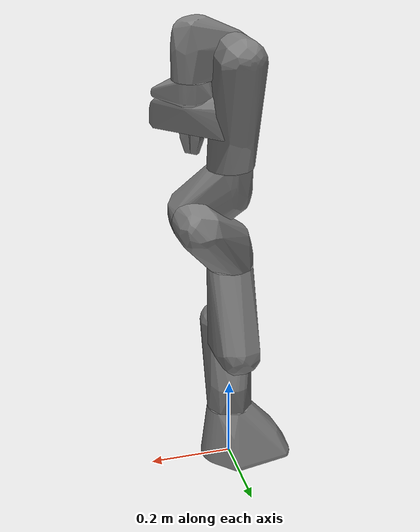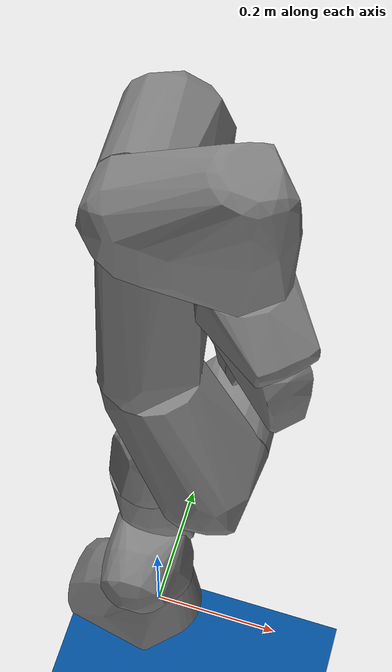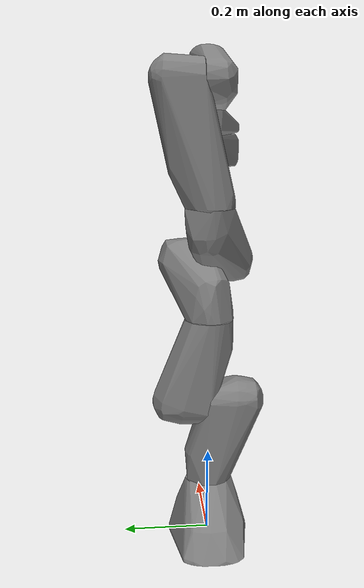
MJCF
<mujoco model="MuJoCo Model">
  <compiler angle="radian"/>

  <option timestep="0.01" integrator="implicitfast" ls_iterations="10"/>

  <default>
    <geom friction="1 0.5 0.001"/>
  </default>

  <asset>
    <mesh name="/World/envs/env_0/Robot/panda_link0/collisions/collisions_1" vertex="0.071567 -0.001274 0.001349 -0.001227 -0.094614 -3.2e-05 0.061945 -0.035979 0.001181 0.054855 0.004472 0.14 0.054335 -0.046949 0.001048 0.071081 0.008446 0.00134 0.068619 0.020818 0.001298 0.05859 0.041241 0.001123 0.070665 -0.011563 0.001333 0.067359 -0.024527 0.001276 0.063587 0.032993 0.00121 -0.008865 0.054359 0.140002 0.027681 -0.04768 0.14 0.01437 -0.053249 0.139999 -0.13583 0.066315 1e-06 0.039566 -0.03847 0.140003 0.052652 -0.016356 0.14 0.047476 -0.027926 0.14 0.054877 -0.004566 0.14 -0.052861 0.015711 0.14 0.004086 0.093982 0.000171 -0.000517 0.09467 -6e-06 0.003172 0.09335 0.008631 -0.001599 0.093632 0.008492 0.039102 0.038749 0.14 -0.148808 -0.042055 0 -0.152578 -0.024818 0 0.046247 0.030033 0.14 0.006489 0.073519 0.08108 -0.021853 0.050685 0.14 0.000349 -0.055082 0.14 -0.143472 -0.054862 0 -0.118609 -0.03105 0.06134 -0.052884 -0.015585 0.14 0.007694 0.092272 0.000234 0.007344 0.091447 0.008318 0.053554 0.012818 0.14 0.050948 0.020789 0.14 0.052578 0.048771 0.001018 -0.133699 0.066932 0.007415 0.003496 -0.094216 0.000178 0.008268 -0.091825 0.000243 -0.065898 -0.076548 0.058979 -0.071675 -0.075621 0.05752 -0.037696 -0.040138 0.14 -0.151587 -0.024833 0.008048 -0.15241 0.025827 0 -0.129159 0.068684 0.007445 -0.031706 0.04501 0.14 -0.109983 0.048611 0.05888 0.009066 -0.073708 0.078596 -0.000867 -0.093737 0.008178 -0.154079 -0.005542 0 -0.140043 0.060723 0 -0.113238 0.044715 0.059685 0.006782 -0.073532 0.080976 -0.122615 0.005636 0.061149 -0.14929 0.04025 0 -0.023111 -0.075972 0.068968 -0.146172 0.046753 0.007704 -0.119414 0.02879 0.06114 -0.145377 0.050892 0 -0.131612 0.068847 1e-06 -0.131625 -0.068799 -1e-06" face="63 1 43 41 1 4 41 4 15 23 21 47 11 23 47 10 21 7 10 6 21 38 35 24 38 34 35 38 7 21 38 21 34 12 15 30 12 41 15 8 1 0 8 9 1 2 4 1 2 1 9 40 51 1 40 1 41 53 21 1 53 39 14 62 14 39 62 39 47 62 47 21 62 21 53 62 53 14 22 21 23 33 15 11 29 39 48 29 48 11 29 47 39 29 11 47 37 6 10 16 9 8 5 3 0 5 21 6 5 0 1 5 1 21 13 12 30 55 58 51 55 30 58 55 13 30 42 30 43 42 58 30 42 51 58 42 1 51 42 43 1 26 52 1 26 1 25 31 1 63 31 25 1 31 63 32 46 1 52 46 57 1 59 54 39 59 60 54 59 39 53 59 57 46 61 1 57 61 53 1 61 57 59 61 59 53 49 48 39 49 54 48 49 39 54 20 35 34 20 22 35 20 34 21 20 21 22 28 23 11 28 22 23 28 11 24 28 24 35 28 35 22 19 11 48 19 33 11 19 48 54 19 54 60 44 30 15 44 15 33 44 43 30 44 33 32 44 63 43 44 32 63 56 32 33 56 19 60 56 33 19 56 60 59 56 59 46 27 15 37 27 11 15 27 24 11 27 7 38 27 38 24 27 10 7 27 37 10 36 15 3 36 37 15 36 6 37 36 5 6 36 3 5 18 3 15 18 15 16 18 16 8 18 0 3 18 8 0 17 16 15 17 15 4 17 4 2 17 2 9 17 9 16 50 12 13 50 13 55 50 41 12 50 40 41 50 51 40 50 55 51 45 26 25 45 25 31 45 31 32 45 32 56 45 52 26 45 46 52 45 56 46"/>
    <mesh name="/World/envs/env_0/Robot/panda_link1/collisions/collisions_2" vertex="0.024036 -0.064734 0.049546 -0.042252 -0.00048 0.035591 -0.050318 -0.000497 0.022466 -0.020955 -0.064622 0.050931 -0.049066 -0.08831 0.012652 -0.008 -0.0547 -0.192 0.000198 0.054921 -0.125178 -0.053198 -0.062031 0.014282 -0.054987 -0.060276 0.002945 0.055161 -0.003628 -0.192004 0.008945 0.054262 -0.126225 -0.053668 -0.013207 -0.192003 -0.001065 -0.065471 0.054973 -0.014252 -0.084755 0.049507 -0.043082 -0.06386 0.034509 -0.052335 0.017523 -0.192 0.053515 -0.062246 0.012661 0.051739 0.019267 -0.119399 0.054382 0.008925 -0.191997 0.004878 -0.129373 0.000947 -0.005769 -0.128742 0.007856 -0.011212 -0.122478 0.026151 -0.044899 -0.107411 0.012099 -0.042942 -0.03502 -0.191999 0.023176 -0.05014 -0.192 -0.02296 -0.085024 0.04611 -0.031829 -0.064068 0.045033 -0.025424 0.048832 -0.126658 0.034727 -0.116294 -0.014648 0.013466 -0.127783 0.005269 0.003794 -0.089031 0.050524 -0.025502 -0.114408 0.030829 -0.026108 -0.048685 -0.192 -0.028668 -0.119668 -0.016316 0.046016 -0.000517 0.030428 0.009926 -0.064837 0.05423 -0.051902 -0.080543 0.005154 -0.033995 -0.107523 0.031677 -0.033893 -0.117564 -0.012558 -0.045587 -0.107758 -0.007254 -0.008857 0.054245 -0.126016 0.046528 -0.06468 0.029295 0.046444 -0.107388 0.000104 0.037478 0.040467 -0.125702 0.01382 -0.119368 0.030524 -0.041507 -0.107025 0.021371 -0.014551 -0.107379 0.044191 -0.034037 -0.083714 0.038941 -0.03331 0.043874 -0.126128 -0.021549 0.050744 -0.192 0.042932 -0.107418 0.017665 0.017859 -0.124397 -0.016615 0.025412 -0.120945 -0.017632 0.032858 -0.064327 0.044151 0.033284 -0.107291 0.032546 -0.015549 -0.126569 -0.010424 0.021351 -0.084324 0.047018 -0.041334 -0.084538 0.030631 0.013692 -0.107199 0.044435 -0.054768 -0.000602 0.007517 0.011304 -0.091072 0.048954 0.037113 -0.040731 -0.192 0.049622 -0.024777 -0.191999 0.034292 0.04317 -0.192" face="3 12 1 11 49 9 11 8 59 14 1 2 18 16 9 18 17 16 29 19 51 48 59 2 35 1 12 34 1 35 34 16 17 26 3 1 26 1 14 7 14 2 7 59 8 7 2 59 20 19 29 5 24 51 5 9 24 5 11 9 32 38 23 32 33 38 32 23 11 32 11 5 57 14 7 45 37 57 45 4 22 45 7 4 45 57 7 36 8 11 36 22 4 36 7 8 36 4 7 39 23 38 39 38 22 39 11 23 39 36 11 39 22 36 63 9 49 63 18 9 63 49 10 63 17 18 6 40 1 6 49 40 6 10 49 6 1 34 6 34 10 52 24 28 52 51 24 52 28 29 52 29 51 44 58 46 44 46 21 44 29 50 44 21 20 44 20 29 41 50 16 41 16 34 41 34 53 42 9 16 42 16 50 42 62 9 42 29 28 42 50 29 61 28 24 61 24 9 61 9 62 61 42 28 61 62 42 31 46 37 31 21 46 31 37 45 31 45 22 31 20 21 31 22 38 31 38 20 30 46 58 30 35 12 13 12 3 13 30 12 13 46 30 27 40 49 27 49 48 27 48 2 27 1 40 27 2 1 15 11 59 15 59 48 15 49 11 15 48 49 54 53 56 54 41 53 54 50 41 54 56 58 54 58 44 54 44 50 60 58 56 60 56 35 60 30 58 60 35 30 43 34 17 43 10 34 43 17 63 43 63 10 0 53 34 0 34 35 0 56 53 0 35 56 47 26 14 47 57 37 47 14 57 25 3 26 25 13 3 25 46 13 25 26 47 25 37 46 25 47 37 55 38 33 55 20 38 55 19 20 55 51 19 55 5 51 55 33 32 55 32 5"/>
    <mesh name="/World/envs/env_0/Robot/panda_link2/collisions/collisions_3" vertex="0.05478 0.008755 0.000695 0.054985 0.001797 0.060077 0.048413 -0.123261 -0.026532 -0.010578 -0.194 0.054149 0.011452 -0.126129 -0.053787 -0.032099 0.045 0.000508 -0.043963 0.033295 0.00049 0.039076 0.038788 0.000497 0.054135 0.009444 0.062822 0.039946 -0.124494 -0.037926 -0.055153 -0.19401 0.005101 -0.021417 0.050906 0.064564 -0.007769 0.054505 0.064503 -0.017912 0.052124 0.000504 -0.05118 0.020557 0.000499 0.037916 -0.014736 0.113617 -0.00246 0.05522 0.000493 0.037325 -0.194 -0.040575 -0.051883 -0.194 -0.018395 -0.043936 -0.011797 0.108632 0.003379 0.055008 0.06444 0.005598 -0.194 0.054903 0.000752 -0.007417 0.129075 0.04778 -0.194 0.027475 0.054936 -0.194003 -0.005 -0.048742 -0.193999 0.025965 -0.03743 -0.194 0.040666 -0.036151 0.041648 0.064481 -0.003484 -0.016731 0.127099 0.031051 -0.126082 -0.045501 -0.02768 -0.126212 -0.047668 0.036953 -0.194 0.041087 -4.3e-05 -0.194 -0.055097 0.016019 -0.194 -0.052881 0.053431 -0.194 0.013614 -0.045213 0.031449 0.063457 -0.051227 0.020371 0.06275 -0.013871 -0.126413 -0.05334 -0.031162 0.034397 0.107352 -0.054916 0.004632 0.061059 -0.051425 0.013273 0.074757 0.002612 0.008569 0.128877 0.051786 0.00163 0.081572 -0.026749 -0.194 -0.04829 -0.05452 -0.194 -0.008187 -0.009527 0.037623 0.115319 0.016992 0.028742 0.119516 0.019051 -0.017229 0.123856 -0.015039 0.011399 0.126577 -0.03812 -0.194 -0.039784 -0.04667 -0.194 -0.029425 0.003973 0.000518 0.129489 0.026031 0.009702 0.122739 0.044607 -0.011733 0.107859 -0.044065 0.015443 0.10713 -0.042764 0.005394 0.111331 0.02 0.046744 0.088105 0.019662 0.0421 0.107295 0.039956 0.03257 0.084039 0.036581 0.028501 0.107512 -0.023691 0.021526 0.120405 0.013767 0.020453 0.124378 0.031728 0.03403 0.107127 0.024906 0.031369 0.114376" face="25 10 26 24 0 1 49 30 43 49 43 10 44 18 10 44 14 18 44 10 39 44 39 14 32 10 43 45 48 61 45 11 38 34 23 24 34 24 1 34 1 42 31 21 10 31 10 24 31 24 23 52 59 63 53 42 59 53 59 52 53 52 15 53 34 42 53 23 34 53 31 23 53 15 31 8 1 0 8 42 1 8 59 42 8 58 59 7 4 16 7 16 20 7 8 0 7 58 8 12 20 16 12 11 45 12 57 20 12 45 57 56 20 57 56 58 7 56 7 20 19 25 26 19 26 28 19 10 25 19 48 55 19 28 48 19 39 10 54 38 35 54 19 55 54 40 39 54 39 19 27 38 11 27 35 38 27 11 5 36 35 14 36 39 40 36 14 39 36 40 54 36 54 35 50 14 30 50 30 49 50 18 14 50 10 18 50 49 10 6 30 14 6 14 35 6 35 27 6 27 5 13 5 11 13 12 16 13 11 12 29 0 9 29 7 0 29 4 7 29 9 17 2 0 24 2 9 0 2 24 17 2 17 9 33 32 4 33 29 17 33 4 29 33 10 32 33 24 10 33 17 24 37 4 32 37 43 30 37 32 43 37 30 6 37 6 5 37 5 13 37 16 4 37 13 16 3 28 26 3 21 28 3 26 10 3 10 21 22 51 48 22 48 28 47 28 21 47 21 31 47 31 15 47 22 28 47 51 22 47 52 51 47 15 52 62 57 63 62 63 59 62 59 58 62 56 57 62 58 56 46 63 57 46 57 45 46 45 61 46 61 52 46 52 63 41 48 51 41 61 48 41 51 52 41 52 61 60 45 38 60 48 45 60 38 54 60 55 48 60 54 55"/>
    <mesh name="/World/envs/env_0/Robot/panda_link3/collisions/collisions_4" vertex="0.046301 -0.030187 -0.120999 -0.016675 0.052758 -0.121001 0.082189 0.000568 0.055156 0.11444 0.101004 -0.01911 -0.030187 -0.023146 -0.026645 0.106453 0.065611 0.046881 0.082221 0.107566 -0.020426 0.049881 0.023787 -0.121 0.124788 0.091303 -0.019898 0.120542 0.000546 0.040058 0.106871 0.101004 0.027909 0.129196 0.000776 -0.029613 0.127308 0.000507 0.032247 0.135174 0.065815 -0.001263 0.133141 0.066125 -0.014248 0.102467 0.000564 0.051469 0.054401 0.008968 -0.121 0.001935 -0.054534 -0.101876 0.132378 0.000608 0.023833 -0.037087 0.041023 -0.121018 0.045446 0.100871 -0.002465 0.099071 0.108666 -0.005736 0.119397 0.100939 0.000438 0.113908 0.091545 -0.034439 0.124558 0.065814 -0.031581 0.082949 0.111203 -0.001596 0.090231 0.092298 0.045707 0.071485 0.000568 0.054191 -0.051607 -0.019395 -0.121 0.00728 -0.047779 -0.052229 0.052254 0.090089 0.036272 0.063756 0.106924 -0.012549 0.051103 0.067234 0.042013 -0.054422 0.00201 -0.099662 0.115961 0.066544 0.040596 0.116054 0.086166 0.034788 0.116384 0.100933 0.014279 0.114547 0.093809 0.03214 0.122662 0.093747 0.021421 0.133242 0.066199 0.014384 0.137561 0.000591 -0.005199 -0.025692 -0.048999 -0.120998 -0.054615 0.008915 -0.120971 -0.054646 -0.007606 -0.120996 -0.013154 -0.043029 -0.037657 -0.051133 0.01661 -0.089954 -0.037785 0.033267 -0.063465 -0.038601 0.012569 -0.029565 -0.051532 0.000953 -0.070878 0.063816 0.108261 0.000704 0.07258 0.110435 5.8e-05 0.059348 0.066195 0.047189 -0.044413 -0.008708 -0.038502 -0.036818 0.027215 -0.040392 -0.034843 -0.013918 -0.026153 0.013829 -0.052766 -0.101191 0.136889 0.000544 0.010212 -0.015856 -0.03838 -0.030971 0.054918 -0.007835 -0.120998 0.005735 -0.054917 -0.120998 0.009506 0.054968 -0.120998 -0.00713 -0.054668 -0.120995 0.032959 -0.044375 -0.120999 0.018842 -0.051789 -0.121005" face="60 1 6 58 11 0 38 36 10 38 13 8 34 35 5 34 5 9 34 9 12 56 63 40 56 40 13 62 11 40 62 40 63 62 0 11 62 63 0 61 17 44 61 44 41 28 48 43 4 28 41 4 41 44 4 44 57 15 5 2 15 9 5 29 44 17 29 12 9 29 9 15 29 18 12 29 2 44 29 15 2 50 25 6 50 10 25 50 49 30 31 6 1 31 50 6 31 49 50 53 47 30 53 48 47 19 43 42 19 28 43 19 63 41 19 41 28 19 60 7 19 1 60 20 30 49 20 53 30 20 46 53 20 19 46 20 1 19 20 31 1 20 49 31 33 42 43 33 43 48 52 54 47 52 47 48 52 48 28 52 4 54 52 28 4 45 19 42 45 46 19 45 42 33 45 33 48 45 53 46 45 48 53 23 24 7 23 8 24 23 3 8 23 7 60 23 60 6 23 6 3 14 11 24 14 40 11 14 13 40 14 8 13 14 24 8 16 0 63 16 58 0 16 19 7 16 63 19 16 7 24 16 24 11 16 11 58 21 25 10 21 10 36 21 6 25 21 3 6 22 8 3 22 38 8 22 36 38 22 21 36 22 3 21 26 30 51 26 50 30 26 10 50 26 5 35 26 2 5 26 51 2 39 13 38 39 56 13 39 18 56 39 12 18 39 34 12 39 38 35 39 35 34 37 35 38 37 38 10 37 26 35 37 10 26 27 2 51 27 54 4 27 4 57 27 44 2 27 57 44 32 30 47 32 51 30 32 47 54 32 54 27 32 27 51 55 56 18 55 63 56 55 18 29 55 29 17 59 41 63 59 61 41 59 17 61 59 55 17 59 63 55"/>
    <mesh name="/World/envs/env_0/Robot/panda_link4/collisions/collisions_5" vertex="0.022569 -0.039557 0.093692 0.034986 -0.029175 0.09376 0.045213 0.031664 0.001119 -0.028172 0.124 -0.010519 -0.074238 0.123996 -0.05458 -0.037091 0.123998 -0.031832 0.026427 -0.045716 0.065717 -0.092249 0.124 0.054293 0.035207 -0.010845 0.100914 -0.07657 0.039825 -0.045276 -0.032575 0.017421 0.100906 0.043362 -0.013919 0.093861 0.016564 -0.007618 0.108349 0.008852 0.002476 0.110543 -0.07238 0.123999 0.054529 0.002049 0.037664 0.10079 -0.137607 0.123998 0.00324 -0.134661 0.123981 0.018168 -0.086144 0.123968 -0.055207 -0.033068 0.123999 0.025663 0.05435 0.010373 0.000642 0.054037 -0.011261 0.000538 -0.082402 0.09292 -0.053905 0.022579 -0.050414 0.000558 0.043896 -0.033551 0.000521 0.050405 -0.022856 0.000627 0.021827 0.02994 0.100929 -0.004346 0.002963 0.111052 -0.041858 -0.020943 0.089692 -0.05138 0.123999 0.045753 0.031774 0.03386 0.091676 -0.0277 0.124 0.006122 -0.054846 0.124009 -0.04796 0.05514 -0.002814 0.000579 0.004073 -0.05515 0.000623 -0.086007 0.037573 -0.044819 -0.095079 0.030948 -0.039772 -0.114342 0.028618 -0.024115 0.009153 -0.05208 0.065466 -0.016019 0.001295 0.109144 -0.130713 0.06118 -0.01327 0.050232 0.023144 0.000568 0.048737 0.020431 0.065666 -0.023522 -0.049968 0.000617 0.045445 -0.026708 0.065418 -0.12201 0.074521 0.033735 -0.034936 -0.012055 0.100886 -0.015165 0.009109 0.108663 0.005715 -0.048166 0.086143 -0.006624 -0.046218 0.091497 -0.02617 -0.039015 0.090543 -0.016175 -0.033271 0.100932 -0.073458 0.06948 -0.050559 -0.06897 0.088499 -0.051781 0.036704 0.003599 0.100953 -0.121732 0.031247 0.014315 -0.120676 0.026656 0.003086 -0.031992 -0.041577 0.06683 -0.022347 -0.047624 0.066152 -0.132355 0.063413 0.007006 -0.005765 0.018216 0.1081 -0.126198 0.036393 -0.009207 -0.112995 0.060261 -0.039425 -0.087198 0.079611 -0.052439" face="57 50 55 3 2 5 29 30 19 32 3 5 32 20 33 32 16 7 32 7 29 32 29 19 56 57 55 47 39 27 17 7 16 13 27 12 13 12 54 26 54 30 26 30 29 26 13 54 14 7 15 14 29 7 14 15 26 14 26 29 22 63 18 52 9 63 52 24 9 52 22 53 52 63 22 52 25 24 52 53 25 4 32 53 4 22 18 4 53 22 4 18 16 4 16 32 41 20 32 41 5 2 41 32 5 31 32 19 31 3 32 31 19 30 31 2 3 21 25 53 21 32 33 21 53 32 35 9 34 35 63 9 43 37 36 43 56 37 43 35 34 43 36 35 43 57 56 62 36 37 62 37 40 62 63 35 62 35 36 62 18 63 62 16 18 62 40 16 59 16 40 59 17 16 61 40 37 61 37 56 61 59 40 61 56 55 61 55 59 23 24 6 23 34 9 23 9 24 38 6 48 38 48 49 38 34 23 38 23 6 44 1 6 44 6 24 44 24 25 44 11 1 44 25 21 44 33 11 44 21 33 0 6 1 0 48 6 0 49 48 0 1 12 58 50 57 58 49 50 58 57 43 58 38 49 58 43 34 58 34 38 60 15 7 60 7 47 60 47 27 60 27 13 60 26 15 60 13 26 28 55 50 28 50 46 45 59 55 45 17 59 45 55 28 45 28 46 45 7 17 45 46 7 51 39 46 51 27 39 51 50 49 51 46 50 51 12 27 51 49 0 51 0 12 10 47 7 10 7 46 10 39 47 10 46 39 8 54 12 8 11 54 8 12 1 8 1 11 42 20 41 42 30 54 42 54 11 42 33 20 42 11 33 42 41 2 42 2 31 42 31 30"/>
    <mesh name="/World/envs/env_0/Robot/panda_link5/collisions/collisions_6" vertex="-0.04313 0.034598 -0.258994 -0.0276 0.088409 -0.173066 -0.029237 0.015796 0.038075 0.011487 0.054236 -0.258996 -0.00797 0.054581 -0.259003 0.055083 -0.002321 -0.259005 0.031288 0.015806 0.036584 -0.040353 0.100177 0.032255 0.037409 0.099821 0.035842 -0.017632 0.015806 0.044786 0.05258 0.017422 -0.259 -0.016435 0.125262 0.025051 -0.004211 0.128983 0.016533 -0.038999 0.015812 0.028229 0.050526 0.103338 0.003046 -0.006807 0.129518 0.011324 0.027149 0.088218 -0.175367 0.030975 0.045755 -0.259001 -0.015768 0.128209 0.010706 -0.049491 0.104632 -0.007973 -0.02223 0.08404 -0.1947 -0.026016 0.048977 -0.258996 -0.004649 0.097802 0.052168 -0.002655 0.015805 0.047984 0.024511 0.125729 -0.002052 -0.025397 0.09856 0.04545 0.021609 0.124624 0.021486 0.043474 0.034016 -0.258998 -0.001501 -0.054086 -0.234891 -0.020944 0.127182 0.004685 -0.041418 0.1135 0.007594 -0.049008 0.101881 0.014702 -0.050406 0.10394 0.000262 0.008457 0.097855 0.05158 0.014791 0.015774 0.045936 -0.00634 0.129112 -0.006773 -0.004047 0.129904 0.002559 0.00996 -0.050737 -0.214368 -0.016543 0.127324 -0.007896 -0.034761 0.11653 0.017193 -0.028201 0.123798 0.013646 -0.041061 0.114696 -0.004035 -0.011763 -0.053896 -0.259001 -0.000101 0.117598 0.038153 0.018216 0.127911 0.008189 -0.010877 0.089085 -0.186003 -0.030896 0.110555 0.031109 -0.027126 0.105324 0.039382 -0.031338 -0.044683 -0.22725 0.049514 0.104438 -0.008035 -0.032903 0.122164 0.000226 -0.023461 0.125996 -0.003386 0.003135 -0.055128 -0.258948 -0.04972 -0.003351 -0.264554 -0.036886 -0.040848 -0.259013 -0.049702 0.003472 -0.264544 -0.053972 0.011547 -0.259007 -0.055017 -0.004388 -0.258986 -0.046492 -0.02971 -0.259049 -0.047662 0.015861 0.005784 0.047668 0.015861 0.005726 0.000367 0.089818 -0.185536 -0.019695 -0.05136 -0.242356 -0.011589 -0.053809 -0.248529" face="10 14 5 52 53 5 9 23 22 59 32 57 55 5 53 55 10 5 55 53 57 27 17 16 27 10 55 27 55 17 33 22 23 33 23 34 60 5 14 21 4 55 21 55 0 62 28 13 41 50 1 12 36 15 24 26 14 2 7 13 2 13 28 56 55 57 56 0 55 56 57 32 20 4 21 20 0 1 20 21 0 3 55 4 3 17 55 3 4 61 3 61 16 3 16 17 37 6 34 37 60 6 37 34 23 37 28 52 37 23 9 37 52 5 37 5 60 37 2 28 37 9 2 8 14 26 8 26 33 8 60 14 8 6 60 8 34 6 8 33 34 43 33 26 43 12 11 43 26 12 43 22 33 43 11 47 63 52 28 63 28 62 48 13 59 48 62 13 48 54 62 58 57 53 58 53 54 58 59 57 58 48 59 58 54 48 42 53 52 42 54 53 42 52 63 42 62 54 42 63 62 51 1 50 51 38 1 51 50 29 51 29 38 35 29 36 35 38 29 35 16 61 35 24 16 45 1 38 45 20 1 45 35 61 45 38 35 45 61 4 45 4 20 19 32 41 19 41 1 19 1 0 19 56 32 19 0 56 25 47 7 25 9 22 25 22 43 25 43 47 25 7 2 25 2 9 46 47 11 46 7 47 46 39 7 40 29 50 40 46 11 40 39 46 31 7 39 31 32 59 31 13 7 31 59 13 30 50 41 30 40 50 30 39 40 30 41 32 30 32 31 30 31 39 18 11 12 18 12 15 18 40 11 18 29 40 18 15 36 18 36 29 44 36 12 44 12 26 44 26 24 44 35 36 44 24 35 49 24 14 49 16 24 49 27 16 49 14 10 49 10 27"/>
    <mesh name="/World/envs/env_0/Robot/panda_link6/collisions/collisions_7" vertex="-0.048005 -0.003164 -0.014747 -0.046934 0.010732 -0.014834 -0.043919 -0.019759 -0.014745 0.090083 0.071522 0.036134 0.09621 -0.051223 0.043315 -0.029993 -0.035958 0.029048 -0.040367 0.026331 -0.014752 -0.009168 -0.046587 0.021677 0.052828 -0.051189 0.031754 0.103877 0.012659 0.041045 0.015562 -0.024034 0.056309 -0.010917 -0.047107 -0.014281 0.122347 -0.0512 -0.027866 0.083335 0.020392 -0.043403 0.111398 0.072297 0.015605 0.1001 0.075228 -0.023901 0.067158 0.081681 -0.007441 0.099598 0.048589 0.039292 0.074318 0.074768 0.033919 0.09713 -0.0512 -0.043143 0.132208 -0.051199 0.00135 0.129874 -0.051199 -0.014322 0.129336 -0.051197 0.01563 0.062339 0.077814 0.024078 -0.035869 0.005669 0.042117 0.109158 -0.051199 -0.038847 0.108684 0.074084 -0.011412 0.118023 0.068405 0.008846 0.015051 0.024085 0.056206 0.053597 -0.051187 -0.031059 -0.015126 0.020082 0.052653 -0.031455 0.029034 0.035793 0.043446 -0.017819 0.055119 0.040446 0.018833 0.055529 -0.022397 -0.011884 0.051059 -0.0074 -0.023724 0.054148 -0.043011 0.020195 0.027855 -0.046951 -0.001408 0.029664 0.131348 0.009396 -0.007998 0.100013 0.075251 0.024123 0.12138 0.063099 0.015205 0.086831 0.076754 -0.029051 -0.028926 0.038945 -0.014661 0.05776 0.081278 0.000354 -0.01807 0.034711 0.040549 0.128215 0.049971 0.005706 -0.014513 -0.042906 0.031953 -0.034979 0.031425 0.02851 0.055642 0.079453 0.012235 0.109491 0.010677 -0.038422 -0.031783 -0.025374 0.03875 0.125861 0.020175 -0.022236 0.110567 0.067759 0.026951 0.078251 0.079509 0.024287 0.095384 0.070337 -0.035672 0.077314 0.079608 -0.023509 0.059885 0.080214 -0.015544 -0.005128 0.024063 0.054418 0.121453 0.018448 0.028662 0.126265 0.058419 -0.000245 0.065655 0.081334 0.013335 0.102437 0.068088 0.033798 -0.025173 0.040277 0.022046 0.131421 0.021853 0.006249" face="2 0 19 33 28 10 3 28 33 8 7 11 8 46 7 55 42 56 55 56 16 26 55 16 30 44 31 37 0 2 43 56 42 43 16 56 62 43 42 62 48 43 62 23 48 62 44 23 32 33 10 17 33 9 17 61 3 17 3 33 53 26 16 18 23 44 18 53 23 18 3 53 18 28 3 52 40 14 27 40 59 27 14 40 27 59 26 27 26 14 63 22 20 63 20 38 58 40 52 58 22 63 58 17 9 58 61 17 58 52 61 21 38 20 35 50 46 5 46 50 5 37 2 5 50 37 5 2 11 5 11 7 5 7 46 29 8 11 29 2 19 29 11 2 4 19 12 4 20 22 4 29 19 4 8 29 4 21 20 4 12 21 4 32 10 4 58 9 4 22 58 4 9 33 4 33 32 4 10 35 4 46 8 4 35 46 13 49 19 13 54 49 13 19 0 13 42 54 13 6 42 25 12 19 25 19 49 25 49 12 51 12 49 51 21 12 51 38 21 51 59 38 51 54 59 51 49 54 41 54 42 41 42 55 15 59 54 15 26 59 15 54 41 15 55 26 15 41 55 1 36 6 1 13 0 1 6 13 1 0 37 1 37 36 34 50 35 34 35 30 24 36 37 24 30 31 24 31 36 24 34 30 24 37 50 24 50 34 47 36 31 47 31 44 47 44 62 47 62 42 47 42 6 47 6 36 39 53 3 39 3 61 39 14 26 39 26 53 39 61 52 39 52 14 60 16 43 60 53 16 60 43 48 60 48 23 60 23 53 57 44 30 57 18 44 57 28 18 57 30 35 57 10 28 57 35 10 45 59 40 45 38 59 45 63 38 45 40 58 45 58 63"/>
    <mesh name="/World/envs/env_0/Robot/panda_link7/collisions/collisions_8" vertex="-0.014643 0.026963 0.106821 0.079071 0.035077 0.094492 0.034635 -0.027228 0.052124 0.024465 -0.01859 0.106837 0.033384 -0.028652 0.096679 0.02205 0.022362 0.106818 0.036947 0.079381 0.076667 0.01371 0.042013 0.052003 -0.040712 -0.035504 0.084714 -0.036427 -0.039501 0.089079 -0.011782 -0.042409 0.052055 0.002013 -0.043828 0.096804 -0.001018 -0.04403 0.052071 0.02153 -0.038274 0.096689 0.018262 -0.040127 0.052101 0.080795 0.03667 0.082324 0.077637 0.035709 0.095991 0.040587 -0.017237 0.05204 -0.013272 0.041875 0.052005 -0.028507 0.011434 0.106802 -0.023894 -0.019354 0.106802 0.038972 0.079642 0.093692 0.035179 0.079449 0.093829 0.035256 0.077529 0.096057 -0.031876 0.030179 0.096708 -0.03531 -0.040737 0.084614 -0.029975 -0.032195 0.052039 -0.044035 -0.00162 0.052074 -0.042725 -0.010443 0.052064 0.008517 -0.043263 0.052105 0.081306 0.039723 0.085821 0.078953 0.038309 0.094703 0.055083 0.067465 0.09277 0.027071 -0.03454 0.096768 0.039355 0.081097 0.089372 -0.028757 0.033326 0.05211 -0.039666 -0.036274 0.088832 -0.019961 -0.038751 0.097167 0.006889 -0.029908 0.1068 0.027746 -0.034283 0.052052 0.080879 0.037306 0.090443 0.049938 0.069712 0.094904 0.080019 0.036309 0.078146 0.063813 0.055812 0.076442 0.049675 0.069796 0.076643 0.058682 0.06567 0.088348 0.08036 0.039083 0.092514 0.039656 0.081087 0.081628 0.031151 0.031215 0.051991 -0.043358 -0.006639 0.096822 0.07262 0.048678 0.093146 0.067045 0.056241 0.091529 0.062302 0.055877 0.095824 0.079328 0.037021 0.076647 0.072974 0.047059 0.077306 0.046695 0.075455 0.090601 0.035347 0.079851 0.079387 -0.043266 0.008526 0.052097 0.042535 0.012075 0.052002 0.043768 -0.003468 0.052 -0.037013 -0.023885 0.052071 -0.002946 0.04382 0.052 -0.000489 0.030825 0.1068 0.031087 -0.001497 0.106799" face="16 3 4 1 16 4 56 6 18 7 6 48 28 27 18 28 18 26 28 8 27 59 26 48 59 53 17 59 10 26 57 18 27 37 9 11 63 3 16 63 5 3 63 16 5 52 23 5 52 5 16 52 41 23 52 50 32 52 32 41 62 5 23 2 15 4 29 11 12 29 12 14 29 13 11 29 14 13 61 18 6 61 6 7 61 7 48 61 48 26 61 26 18 49 19 24 49 24 57 49 27 8 49 57 27 25 26 10 25 9 8 25 8 26 25 10 12 25 12 11 25 11 9 60 26 8 60 28 26 60 8 28 58 48 53 58 59 48 58 53 59 39 12 10 39 10 59 39 59 17 39 14 12 39 17 2 39 13 14 39 2 4 35 56 18 35 24 56 35 18 57 35 57 24 33 4 3 33 3 13 33 39 4 33 13 39 38 13 3 38 11 13 38 37 11 51 32 50 51 45 32 51 30 45 51 46 30 51 50 46 31 52 16 31 50 52 31 46 50 31 16 1 31 1 46 0 5 62 0 3 5 0 24 19 0 23 24 0 62 23 40 1 4 40 4 15 40 15 30 40 30 46 40 46 1 42 17 53 42 2 17 42 15 2 42 53 30 42 30 15 44 48 6 44 43 48 44 45 43 54 53 48 54 48 43 54 30 53 54 45 30 54 43 45 47 6 56 47 56 34 47 44 6 47 45 44 55 32 45 55 45 47 55 47 34 22 34 56 22 24 23 22 56 24 21 23 41 21 22 23 21 34 22 21 55 34 21 41 32 21 32 55 36 8 9 36 49 8 20 19 49 20 37 38 20 49 36 20 38 3 20 9 37 20 36 9 20 3 0 20 0 19"/>
    <mesh name="/World/envs/env_0/Robot/panda_hand/collisions/collisions_9" vertex="0.017134 -0.089271 0.063614 -0.017054 -0.095525 0.022121 0.031616 -0.001861 0.00118 -0.031636 -0.000579 0.005973 -0.028011 0.041784 -0.006396 -0.025981 0.07577 -0.005082 -0.000113 0.092808 0.065962 -0.015472 -0.090706 0.06519 -0.016767 0.090252 0.064332 0.016956 -0.091603 0.005563 -4.1e-05 -0.10399 0.005691 0.00381 -0.082966 -0.024449 0.03159 -0.000559 0.006214 0.025448 0.081181 0.003501 -0.031598 -0.001987 0.001153 -0.012988 -0.092496 0.065712 0.01623 -0.099538 0.051584 0.003495 -0.102716 -0.008029 0.017033 -0.096802 0.030322 0.023869 0.090401 0.004368 -0.0015 -0.04587 -0.025925 -0.022761 0.080174 -0.00691 -0.016533 -0.082236 -0.005118 -0.003637 -0.083586 -0.024606 -0.01751 -0.097908 0.051666 -1.7e-05 -0.103743 -0.009199 -0.012567 0.093712 0.065168 0.013425 -0.091927 0.065731 -0.017255 -0.0907 0.063082 -0.018449 0.092016 0.058393 0.003076 -0.087973 -0.023979 0.016735 0.090129 0.064432 0.019802 0.097011 0.020914 0.028015 0.042042 -0.00635 -0.014422 0.091276 0.06569 -0.014623 0.100168 0.055735 0.003602 -0.101195 -0.012628 0.015805 -0.099416 0.05497 -1.6e-05 0.098496 0.027082 -0.000314 0.094615 0.007575 0.016558 -0.085132 -0.003873 0.013139 -0.094063 0.064683 0.015551 0.1002 0.054673 -0.000337 0.086562 -0.004163 0.024515 0.081703 -0.005051 -0.000868 -0.082548 -0.02587 -0.003617 -0.101158 -0.01261 -0.016632 -0.098554 0.054734 0.001191 -0.100301 0.058623 0.01354 0.092672 0.065688 0.022959 0.077901 -0.007399 -0.014617 -0.093442 0.0645 -0.014017 -0.100091 0.056027 -0.023026 0.092897 0.009877 -0.000627 -0.087975 -0.024962 0.024729 0.08574 -0.001232 -0.019229 0.097261 0.050588 -0.016995 0.099363 0.054115 -0.021822 0.095442 0.021756 -0.02527 0.082065 0.005197 -0.023556 0.091166 0.004608 -0.016046 0.093209 0.063617 -0.018193 0.099518 0.043814 -0.019067 0.097697 0.024627" face="28 7 8 31 27 0 56 59 3 30 40 36 23 14 4 24 14 1 24 28 3 24 3 14 24 1 46 49 6 27 49 27 31 49 26 6 13 19 31 12 31 0 12 2 13 12 13 31 34 8 7 34 6 26 57 35 62 57 62 56 58 59 56 58 56 62 29 56 3 29 3 28 29 28 8 51 7 28 11 2 40 11 40 30 11 30 45 41 0 27 16 2 12 16 12 0 16 10 17 9 36 40 9 17 36 9 40 2 54 30 36 54 36 46 54 46 23 54 45 30 54 23 45 25 36 17 25 46 36 25 17 10 25 10 52 25 52 24 25 24 46 22 1 14 22 14 23 22 46 1 22 23 46 47 28 24 47 24 52 47 51 28 47 52 51 20 21 50 20 11 45 20 45 23 20 23 4 20 4 21 5 21 4 5 3 59 5 59 60 5 60 21 5 14 3 5 4 14 43 50 21 43 44 50 43 21 60 43 60 39 43 39 19 42 62 35 42 38 62 42 35 26 42 26 49 42 31 19 42 49 31 55 19 13 55 43 19 55 44 43 53 60 59 53 59 58 53 39 60 63 62 38 63 58 62 63 38 39 63 53 58 63 39 53 61 57 56 61 56 29 61 29 8 61 8 34 61 34 26 61 26 35 61 35 57 32 19 39 32 39 38 32 42 19 32 38 42 33 2 11 33 50 44 33 20 50 33 11 20 33 44 55 33 13 2 33 55 13 15 41 27 15 7 51 15 34 7 15 27 6 15 6 34 48 51 52 48 15 51 48 41 15 48 52 10 37 0 41 37 16 0 37 41 48 37 10 16 37 48 10 18 16 17 18 17 9 18 2 16 18 9 2"/>
    <mesh name="/World/envs/env_0/Robot/panda_leftfinger/collisions/collisions_10" vertex="0.010449 0.002583 0.000147 -0.010387 0.002534 0.000132 -0.00873 -2.4e-05 0.036165 0.00584 0.014274 0.053803 0.01036 0.026403 0.000155 0.008616 0.013989 0.051328 0.0104 0.025253 0.019037 0.010495 0.015103 0.018436 0.008693 -0.000133 0.050166 -0.008623 -5.7e-05 0.050953 -0.007778 0.014218 0.052366 -0.010401 0.026309 0.000167 -0.010479 0.016102 0.018988 -0.008841 0.013918 0.050589 -0.010389 0.02522 0.019188 -0.005481 -9.1e-05 0.053725 0.006138 -2.1e-05 0.053578 -0.005278 0.014293 0.053849" face="9 12 1 0 7 8 2 9 1 2 0 8 2 1 0 4 7 0 4 0 1 5 8 7 16 8 5 16 5 3 6 7 4 6 5 7 6 3 5 13 12 9 13 9 10 15 8 16 15 2 8 15 9 2 15 10 9 15 16 3 14 13 10 14 12 13 14 6 4 17 15 3 17 10 15 17 14 10 17 3 6 17 6 14 11 1 12 11 12 14 11 4 1 11 14 4"/>
    <mesh name="/World/envs/env_0/Robot/panda_rightfinger/collisions/collisions_11" vertex="0.010449 0.002583 0.000147 -0.010387 0.002534 0.000132 -0.00873 -2.4e-05 0.036165 0.00584 0.014274 0.053803 0.01036 0.026403 0.000155 0.008616 0.013989 0.051328 0.0104 0.025253 0.019037 0.010495 0.015103 0.018436 0.008693 -0.000133 0.050166 -0.008623 -5.7e-05 0.050953 -0.007778 0.014218 0.052366 -0.010401 0.026309 0.000167 -0.010479 0.016102 0.018988 -0.008841 0.013918 0.050589 -0.010389 0.02522 0.019188 -0.005481 -9.1e-05 0.053725 0.006138 -2.1e-05 0.053578 -0.005278 0.014293 0.053849" face="9 12 1 0 7 8 2 9 1 2 0 8 2 1 0 4 7 0 4 0 1 5 8 7 16 8 5 16 5 3 6 7 4 6 5 7 6 3 5 13 12 9 13 9 10 15 8 16 15 2 8 15 9 2 15 10 9 15 16 3 14 13 10 14 12 13 14 6 4 17 15 3 17 10 15 17 14 10 17 3 6 17 6 14 11 1 12 11 12 14 11 4 1 11 14 4"/>
  </asset>

  <worldbody>
    <geom name="/World/ground/GroundPlane/CollisionPlane_0" size="5 5 5" pos="0 0 -1.05" type="plane" contype="2" conaffinity="2147483645" friction="0.5 0.25 0.0005" rgba="0 0.3 0.6 1"/>
    <body name="/World/envs/env_0/Robot/panda_link0">
      <inertial pos="-0.0291898 -0.000879453 0.0566033" quat="0.00411399 0.564916 0.0132856 0.825031" mass="2.99647" diaginertia="0.0126063 0.0116919 0.00851673"/>
      <geom name="/World/envs/env_0/Robot/panda_link0/collisions/collisions_1" type="mesh" contype="4" conaffinity="2147483643" friction="0.5 0.25 0.0005" mesh="/World/envs/env_0/Robot/panda_link0/collisions/collisions_1"/>
      <body name="/World/envs/env_0/Robot/panda_link1" pos="0 0 0.333">
        <inertial pos="1.13243e-05 -0.0312655 -0.0693733" quat="0.984661 0.174481 -0.00010109 0.000345821" mass="2.97504" diaginertia="0.0176202 0.0165198 0.00586128"/>
        <joint name="/World/envs/env_0/Robot/panda_link0/panda_joint1" pos="0 0 0" axis="1.19209e-07 0 1" limited="true" range="-2.8973 2.8973" armature="0.001" frictionloss="1e-05"/>
        <geom name="/World/envs/env_0/Robot/panda_link1/collisions/collisions_2" type="mesh" contype="4" conaffinity="2147483643" friction="0.5 0.25 0.0005" mesh="/World/envs/env_0/Robot/panda_link1/collisions/collisions_2"/>
        <body name="/World/envs/env_0/Robot/panda_link2" quat="0.707107 -0.707107 0 0">
          <inertial pos="-1.31437e-05 -0.0703214 0.0311783" quat="0.574839 0.818267 -5.99109e-05 -6.64197e-05" mass="3.00425" diaginertia="0.0180142 0.0168923 0.00593454"/>
          <joint name="/World/envs/env_0/Robot/panda_link1/panda_joint2" pos="0 0 0" axis="1.19209e-07 0 1" limited="true" range="-1.7628 1.7628" armature="0.001" frictionloss="1e-05"/>
          <geom name="/World/envs/env_0/Robot/panda_link2/collisions/collisions_3" type="mesh" contype="8" conaffinity="2147483639" friction="0.5 0.25 0.0005" mesh="/World/envs/env_0/Robot/panda_link2/collisions/collisions_3"/>
          <body name="/World/envs/env_0/Robot/panda_link3" pos="0 -0.316 0" quat="0.707107 0.707107 0 0">
            <inertial pos="0.0443483 0.0249282 -0.0381301" quat="0.0615223 0.349825 0.23429 0.904956" mass="2.32784" diaginertia="0.00992797 0.00972427 0.00417338"/>
            <joint name="/World/envs/env_0/Robot/panda_link2/panda_joint3" pos="0 0 0" axis="1.19209e-07 0 1" limited="true" range="-2.8973 2.8973" armature="0.001" frictionloss="1e-05"/>
            <geom name="/World/envs/env_0/Robot/panda_link3/collisions/collisions_4" type="mesh" contype="8" conaffinity="2147483639" friction="0.5 0.25 0.0005" mesh="/World/envs/env_0/Robot/panda_link3/collisions/collisions_4"/>
            <body name="/World/envs/env_0/Robot/panda_link4" pos="0.0825 0 0" quat="0.707107 0.707107 0 0">
              <inertial pos="-0.0385502 0.0395255 0.0247162" quat="0.813566 0.465042 0.30979 0.160861" mass="2.3738" diaginertia="0.0102727 0.0100731 0.00430367"/>
              <joint name="/World/envs/env_0/Robot/panda_link3/panda_joint4" pos="0 0 0" axis="1.19209e-07 0 1" limited="true" range="-3.0718 -0.0698" armature="0.001" frictionloss="1e-05"/>
              <geom name="/World/envs/env_0/Robot/panda_link4/collisions/collisions_5" type="mesh" contype="16" conaffinity="2147483631" friction="0.5 0.25 0.0005" mesh="/World/envs/env_0/Robot/panda_link4/collisions/collisions_5"/>
              <body name="/World/envs/env_0/Robot/panda_link5" pos="-0.0825 0.384 0" quat="0.707107 -0.707107 0 0">
                <inertial pos="-6.37318e-05 0.0384123 -0.10997" quat="0.990767 -0.13557 0.000963583 0.000695687" mass="3.4191" diaginertia="0.0298391 0.0287638 0.00609433"/>
                <joint name="/World/envs/env_0/Robot/panda_link4/panda_joint5" pos="0 0 0" axis="1.19209e-07 0 1" limited="true" range="-2.8973 2.8973" armature="0.001" frictionloss="1e-05"/>
                <geom name="/World/envs/env_0/Robot/panda_link5/collisions/collisions_6" type="mesh" contype="16" conaffinity="2147483631" friction="0.5 0.25 0.0005" mesh="/World/envs/env_0/Robot/panda_link5/collisions/collisions_6"/>
                <body name="/World/envs/env_0/Robot/panda_link6" quat="0.707107 0.707107 0 0">
                  <inertial pos="0.0510022 0.00693267 0.00616904" quat="-0.0460861 0.754363 0.044494 0.653324" mass="1.43494" diaginertia="0.00435645 0.00356175 0.00225453"/>
                  <joint name="/World/envs/env_0/Robot/panda_link5/panda_joint6" pos="0 0 0" axis="1.19209e-07 0 1" limited="true" range="-0.0175 3.7525" armature="0.001" frictionloss="1e-05"/>
                  <geom name="/World/envs/env_0/Robot/panda_link6/collisions/collisions_7" type="mesh" contype="32" conaffinity="2147483615" friction="0.5 0.25 0.0005" mesh="/World/envs/env_0/Robot/panda_link6/collisions/collisions_7"/>
                  <body name="/World/envs/env_0/Robot/panda_link7" pos="0.088 0 0" quat="0.707107 0.707107 0 0">
                    <inertial pos="0.0103613 0.0103596 0.0791078" quat="0.63547 0.278021 -0.670462 0.263368" mass="0.446029" diaginertia="0.000681499 0.000564347 0.000298791"/>
                    <joint name="/World/envs/env_0/Robot/panda_link6/panda_joint7" pos="0 0 0" axis="1.19209e-07 0 1" limited="true" range="-2.8973 2.8973" armature="0.001" frictionloss="1e-05"/>
                    <geom name="/World/envs/env_0/Robot/panda_link7/collisions/collisions_8" type="mesh" contype="32" conaffinity="2147483615" friction="0.5 0.25 0.0005" mesh="/World/envs/env_0/Robot/panda_link7/collisions/collisions_8"/>
                    <body name="/World/envs/env_0/Robot/panda_hand" pos="0 0 0.107" quat="0.92388 0 0 -0.382683">
                      <inertial pos="-2.80451e-06 -0.00061553 0.0239295" quat="0.697945 0.716151 -0.000243739 8.50261e-05" mass="0.708856" diaginertia="0.00240552 0.00217784 0.000482456"/>
                      <geom name="/World/envs/env_0/Robot/panda_hand/collisions/collisions_9" type="mesh" contype="64" conaffinity="2147483583" friction="0.5 0.25 0.0005" mesh="/World/envs/env_0/Robot/panda_hand/collisions/collisions_9"/>
                      <body name="/World/envs/env_0/Robot/panda_leftfinger" pos="0 0 0.0584">
                        <inertial pos="-2.40857e-05 0.0119581 0.0237818" quat="0.996178 0.0868641 -3.37403e-05 -0.00921531" mass="0.0219763" diaginertia="5.7228e-06 5.5859e-06 1.55898e-06"/>
                        <joint name="/World/envs/env_0/Robot/panda_hand/panda_finger_joint1" pos="0 0 0" axis="1.19209e-07 1 0" type="slide" limited="true" range="0 0.04" armature="0.001" frictionloss="1e-05"/>
                        <geom name="/World/envs/env_0/Robot/panda_leftfinger/collisions/collisions_10" type="mesh" contype="128" conaffinity="2147483519" friction="0.5 0.25 0.0005" mesh="/World/envs/env_0/Robot/panda_leftfinger/collisions/collisions_10"/>
                      </body>
                      <body name="/World/envs/env_0/Robot/panda_rightfinger" pos="0 0 0.0584">
                        <inertial pos="2.40867e-05 -0.0119581 0.0237818" quat="0.996178 -0.0868641 3.37365e-05 -0.00921527" mass="0.0219763" diaginertia="5.7228e-06 5.5859e-06 1.55898e-06"/>
                        <joint name="/World/envs/env_0/Robot/panda_hand/panda_finger_joint2" pos="0 0 0" axis="1.19209e-07 -1 0" type="slide" limited="true" range="0 0.04" armature="0.001" frictionloss="1e-05"/>
                        <geom name="/World/envs/env_0/Robot/panda_rightfinger/collisions/collisions_11" quat="-4.37114e-08 0 0 1" type="mesh" contype="64" conaffinity="2147483583" friction="0.5 0.25 0.0005" mesh="/World/envs/env_0/Robot/panda_rightfinger/collisions/collisions_11"/>
                      </body>
                    </body>
                  </body>
                </body>
              </body>
            </body>
          </body>
        </body>
      </body>
    </body>
  </worldbody>

  <contact>
    <exclude body1="/World/envs/env_0/Robot/panda_link0" body2="/World/envs/env_0/Robot/panda_link1"/>
    <exclude body1="/World/envs/env_0/Robot/panda_link1" body2="/World/envs/env_0/Robot/panda_link2"/>
    <exclude body1="/World/envs/env_0/Robot/panda_link2" body2="/World/envs/env_0/Robot/panda_link3"/>
    <exclude body1="/World/envs/env_0/Robot/panda_link3" body2="/World/envs/env_0/Robot/panda_link4"/>
    <exclude body1="/World/envs/env_0/Robot/panda_link4" body2="/World/envs/env_0/Robot/panda_link5"/>
    <exclude body1="/World/envs/env_0/Robot/panda_link5" body2="/World/envs/env_0/Robot/panda_link6"/>
    <exclude body1="/World/envs/env_0/Robot/panda_link6" body2="/World/envs/env_0/Robot/panda_link7"/>
    <exclude body1="/World/envs/env_0/Robot/panda_link7" body2="/World/envs/env_0/Robot/panda_hand"/>
    <exclude body1="/World/envs/env_0/Robot/panda_hand" body2="/World/envs/env_0/Robot/panda_leftfinger"/>
    <exclude body1="/World/envs/env_0/Robot/panda_hand" body2="/World/envs/env_0/Robot/panda_rightfinger"/>
  </contact>

  <actuator>
    <general joint="/World/envs/env_0/Robot/panda_link0/panda_joint1" forcerange="-87 87" biastype="affine" gainprm="80" biasprm="0 -80 -4"/>
    <general joint="/World/envs/env_0/Robot/panda_link1/panda_joint2" forcerange="-87 87" biastype="affine" gainprm="80" biasprm="0 -80 -4"/>
    <general joint="/World/envs/env_0/Robot/panda_link2/panda_joint3" forcerange="-87 87" biastype="affine" gainprm="80" biasprm="0 -80 -4"/>
    <general joint="/World/envs/env_0/Robot/panda_link3/panda_joint4" forcerange="-87 87" biastype="affine" gainprm="80" biasprm="0 -80 -4"/>
    <general joint="/World/envs/env_0/Robot/panda_link4/panda_joint5" forcerange="-12 12" biastype="affine" gainprm="80" biasprm="0 -80 -4"/>
    <general joint="/World/envs/env_0/Robot/panda_link5/panda_joint6" forcerange="-12 12" biastype="affine" gainprm="80" biasprm="0 -80 -4"/>
    <general joint="/World/envs/env_0/Robot/panda_link6/panda_joint7" forcerange="-12 12" biastype="affine" gainprm="80" biasprm="0 -80 -4"/>
    <general joint="/World/envs/env_0/Robot/panda_hand/panda_finger_joint1" forcerange="-3 3" biastype="affine" gainprm="20" biasprm="0 -20 -2"/>
    <general joint="/World/envs/env_0/Robot/panda_hand/panda_finger_joint2" forcerange="-3 3" biastype="affine" gainprm="20" biasprm="0 -20 -2"/>
  </actuator>
</mujoco>
